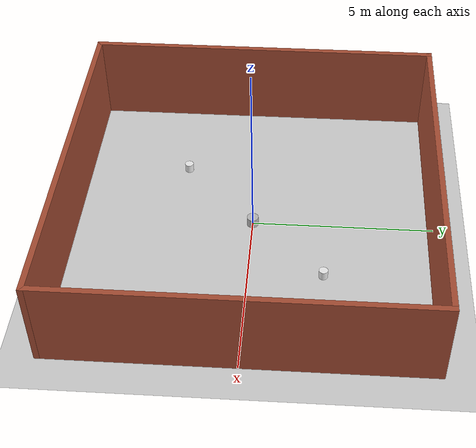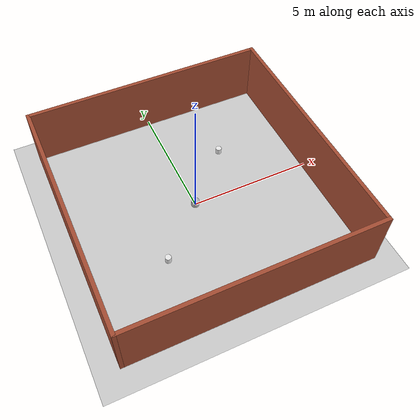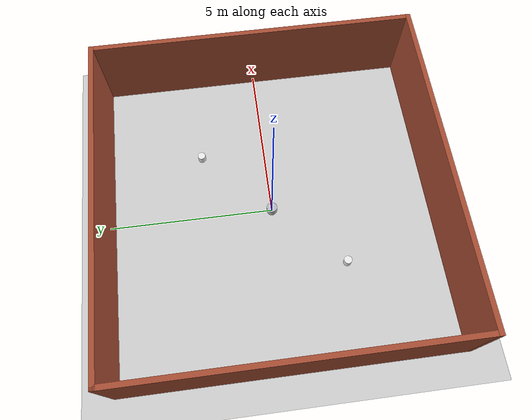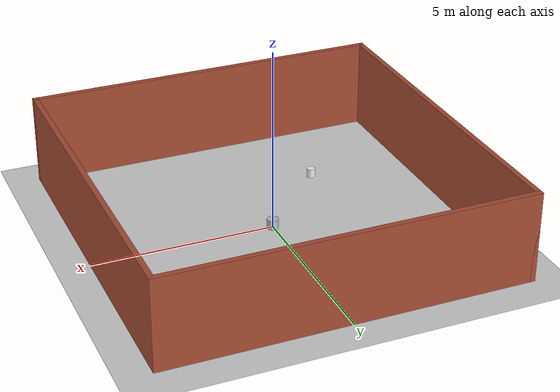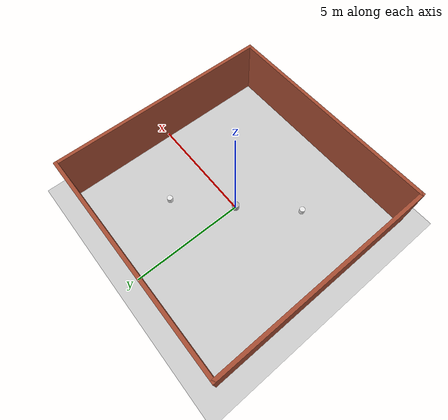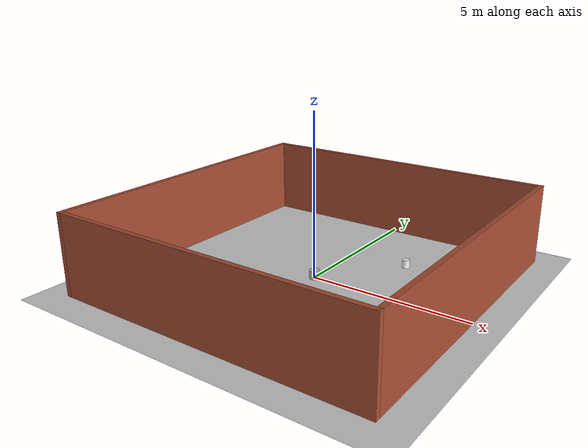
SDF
<sdf version="1.6">
  <world name="bayland_world">
    <physics name="1ms" type="ignored">
      <max_step_size>0.001</max_step_size>
      <real_time_factor>1.0</real_time_factor>
    </physics>
    <plugin
      filename="ignition-gazebo-physics-system"
      name="gz::sim::systems::Physics">
    </plugin>
    <plugin
      filename="ignition-gazebo-user-commands-system"
      name="gz::sim::systems::UserCommands">
    </plugin>
    <plugin
      filename="ignition-gazebo-scene-broadcaster-system"
      name="gz::sim::systems::SceneBroadcaster">
    </plugin>
    <plugin
      filename="ignition-gazebo-contact-system"
      name="gz::sim::systems::Contact">
    </plugin>

    <light type="directional" name="sun">
      <cast_shadows>true</cast_shadows>
      <pose>0 0 10 0 0 0</pose>
      <diffuse>0.8 0.8 0.8 1</diffuse>
      <specular>0.2 0.2 0.2 1</specular>
      <attenuation>
        <range>1000</range>
        <constant>0.9</constant>
        <linear>0.01</linear>
        <quadratic>0.001</quadratic>
      </attenuation>
      <direction>-0.5 0.1 -0.9</direction>
    </light>

    <model name="ground_plane">
      <static>true</static>
      <link name="link">
        <collision name="collision">
          <geometry>
            <plane>
              <normal>0 0 1</normal>
              <size>100 100</size>
            </plane>
          </geometry>
        </collision>
        <visual name="visual">
          <geometry>
            <plane>
              <normal>0 0 1</normal>
              <size>100 100</size>
            </plane>
          </geometry>
          <material>
            <ambient>0.8 0.8 0.8 1</ambient>
            <diffuse>0.8 0.8 0.8 1</diffuse>
            <specular>0.8 0.8 0.8 1</specular>
          </material>
        </visual>
      </link>
    </model>

<include>
      <uri>model://10by10</uri>
    </include>

    <include>
      <uri>model://obstacle1</uri>
    </include>

    <include>
      <uri>model://obstacle2</uri>
    </include>

    <include>
      <uri>model://obstacle3</uri>
    </include>

    <include>
      <uri>model://obstacle4</uri>
    </include>

    <include>
      <uri>model://obstacle5</uri>
    </include>

    <include>
      <uri>model://obstacle6</uri>
    </include>

    <include>
      <uri>model://obstacle7</uri>
    </include>

    <include>
      <uri>model://obstacle8</uri>
    </include>

  </world>
</sdf>

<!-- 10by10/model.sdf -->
<sdf version='1.6'>
  <model name='10by10'>
      <pose>0.019579 -0.010902 0 0 -0 0</pose>
      <link name='Wall_0'>
        <collision name='Wall_0_Collision'>
          <geometry>
            <box>
              <size>10 0.15 2.5</size>
            </box>
          </geometry>
          <pose>0 0 1.25 0 -0 0</pose>
          <max_contacts>10</max_contacts>
          <surface>
            <contact>
              <ode/>
            </contact>
            <bounce/>
            <friction>
              <torsional>
                <ode/>
              </torsional>
              <ode/>
            </friction>
          </surface>
        </collision>
        <visual name='Wall_0_Visual'>
          <pose>0 0 1.25 0 -0 0</pose>
          <geometry>
            <box>
              <size>10 0.15 2.5</size>
            </box>
          </geometry>
          <material>
            <script>
              <uri>file://media/materials/scripts/gazebo.material</uri>
              <name>Gazebo/Bricks</name>
            </script>
            <ambient>1 1 1 1</ambient>
          </material>
          <meta>
            <layer>0</layer>
          </meta>
        </visual>
        <pose>-4.925 -0 0 0 -0 1.5708</pose>
        <self_collide>0</self_collide>
        <enable_wind>0</enable_wind>
        <kinematic>0</kinematic>
      </link>
      <link name='Wall_1'>
        <collision name='Wall_1_Collision'>
          <geometry>
            <box>
              <size>10 0.15 2.5</size>
            </box>
          </geometry>
          <pose>0 0 1.25 0 -0 0</pose>
          <max_contacts>10</max_contacts>
          <surface>
            <contact>
              <ode/>
            </contact>
            <bounce/>
            <friction>
              <torsional>
                <ode/>
              </torsional>
              <ode/>
            </friction>
          </surface>
        </collision>
        <visual name='Wall_1_Visual'>
          <pose>0 0 1.25 0 -0 0</pose>
          <geometry>
            <box>
              <size>10 0.15 2.5</size>
            </box>
          </geometry>
          <material>
            <script>
              <uri>file://media/materials/scripts/gazebo.material</uri>
              <name>Gazebo/Bricks</name>
            </script>
            <ambient>1 1 1 1</ambient>
          </material>
          <meta>
            <layer>0</layer>
          </meta>
        </visual>
        <pose>0 4.925 0 0 -0 0</pose>
        <self_collide>0</self_collide>
        <enable_wind>0</enable_wind>
        <kinematic>0</kinematic>
      </link>
      <link name='Wall_2'>
        <collision name='Wall_2_Collision'>
          <geometry>
            <box>
              <size>10 0.15 2.5</size>
            </box>
          </geometry>
          <pose>0 0 1.25 0 -0 0</pose>
          <max_contacts>10</max_contacts>
          <surface>
            <contact>
              <ode/>
            </contact>
            <bounce/>
            <friction>
              <torsional>
                <ode/>
              </torsional>
              <ode/>
            </friction>
          </surface>
        </collision>
        <visual name='Wall_2_Visual'>
          <pose>0 0 1.25 0 -0 0</pose>
          <geometry>
            <box>
              <size>10 0.15 2.5</size>
            </box>
          </geometry>
          <material>
            <script>
              <uri>file://media/materials/scripts/gazebo.material</uri>
              <name>Gazebo/Bricks</name>
            </script>
            <ambient>1 1 1 1</ambient>
          </material>
          <meta>
            <layer>0</layer>
          </meta>
        </visual>
        <pose>4.925 -0 0 0 -0 -1.5708</pose>
        <self_collide>0</self_collide>
        <enable_wind>0</enable_wind>
        <kinematic>0</kinematic>
      </link>
      <link name='Wall_3'>
        <collision name='Wall_3_Collision'>
          <geometry>
            <box>
              <size>10 0.15 2.5</size>
            </box>
          </geometry>
          <pose>0 0 1.25 0 -0 0</pose>
          <max_contacts>10</max_contacts>
          <surface>
            <contact>
              <ode/>
            </contact>
            <bounce/>
            <friction>
              <torsional>
                <ode/>
              </torsional>
              <ode/>
            </friction>
          </surface>
        </collision>
        <visual name='Wall_3_Visual'>
          <pose>0 0 1.25 0 -0 0</pose>
          <geometry>
            <box>
              <size>10 0.15 2.5</size>
            </box>
          </geometry>
          <material>
            <script>
              <uri>file://media/materials/scripts/gazebo.material</uri>
              <name>Gazebo/Bricks</name>
            </script>
            <ambient>1 1 1 1</ambient>
          </material>
          <meta>
            <layer>0</layer>
          </meta>
        </visual>
        <pose>0 -4.925 0 0 -0 3.14159</pose>
        <self_collide>0</self_collide>
        <enable_wind>0</enable_wind>
        <kinematic>0</kinematic>
      </link>
      <static>1</static>
    </model>
</sdf>

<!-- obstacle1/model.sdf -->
<sdf version='1.8'>
  <model name="obstacle1">
    <pose>2 2 0.25 0 0 0</pose>
    <static>false</static>
    <link name="link">
      <collision name="obstacle1_collision">
        <geometry>
          <cylinder>
            <radius>0.12</radius>
            <length>0.25</length>
          </cylinder>
        </geometry>
      </collision>
      <visual name="obstacle1_visual">
        <geometry>
          <cylinder>
            <radius>0.12</radius>
            <length>0.25</length>
          </cylinder>
        </geometry>
        <material>
          <script>
            <uri>file://media/materials/scripts/gazebo.material</uri>
            <name>Gazebo/White</name>
          </script>
        </material>
      </visual>
    </link>
  </model>
</sdf>

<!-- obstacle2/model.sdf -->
<sdf version='1.8'>
    <model name="obstacle2">
      <pose>-2 -2 0.25 0 0 0</pose>
      <static>false</static>
      <link name="link">
        <collision name="obstacle2_collision">
          <geometry>
            <cylinder>
              <radius>0.12</radius>
              <length>0.25</length>
            </cylinder>
          </geometry>
        </collision>

        <visual name="obstacle2_visual">
          <geometry>
            <cylinder>
              <radius>0.12</radius>
              <length>0.25</length>
            </cylinder>
          </geometry>
          <material>
            <script>
              <uri>file://media/materials/scripts/gazebo.material</uri>
              <name>Gazebo/White</name>
            </script>
          </material>
        </visual>
      </link>
    </model>
</sdf>

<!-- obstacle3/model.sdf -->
<sdf version='1.6'>
    <model name="obstacle3">
      <link name="link_obstacle3">
        <collision name="collision">
          <geometry>
            <cylinder>
              <radius>0.16</radius>
              <length>0.50</length>
            </cylinder>
          </geometry>
        </collision>

        <visual name="visual">
          <geometry>
            <cylinder>
              <radius>0.16</radius>
              <length>0.50</length>
            </cylinder>
          </geometry>
        </visual>
      </link>
      <plugin name="p3d_base_controller_obstacle3" filename="libgazebo_ros_p3d.so">
        <ros>
          <namespace>/obstacle</namespace>
          <remapping>odom:=odom</remapping>
        </ros>
        <always_on>true</always_on>
        <update_rate>50.0</update_rate>
        <body_name>link_obstacle3</body_name>
        <topic_name>odom_obs</topic_name>
        <gaussian_noise>0.0</gaussian_noise>
        <frame_name>world</frame_name>
        <xyz_offset>0 0 0</xyz_offset>
        <rpy_offset>0 0 0</rpy_offset>
      </plugin>
    </model>
</sdf>

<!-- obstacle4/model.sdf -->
<sdf version='1.6'>
    <model name="obstacle4">
      <link name="link_obstacle4">
        <collision name="collision">
          <geometry>
            <cylinder>
              <radius>0.16</radius>
              <length>0.50</length>
            </cylinder>
          </geometry>
        </collision>

        <visual name="visual">
          <geometry>
            <cylinder>
              <radius>0.16</radius>
              <length>0.50</length>
            </cylinder>
          </geometry>
        </visual>
      </link>
      <plugin name="p3d_base_controller_obstacle4" filename="libgazebo_ros_p3d.so">
        <ros>
          <namespace>/obstacle</namespace>
          <remapping>odom:=odom</remapping>
        </ros>
        <always_on>true</always_on>
        <update_rate>50.0</update_rate>
        <body_name>link_obstacle4</body_name>
        <topic_name>odom_obs</topic_name>
        <gaussian_noise>0.0</gaussian_noise>
        <frame_name>world</frame_name>
        <xyz_offset>0 0 0</xyz_offset>
        <rpy_offset>0 0 0</rpy_offset>
      </plugin>
    </model>
</sdf>

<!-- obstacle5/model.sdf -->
<sdf version='1.6'>
    <model name="obstacle5">
      <link name="link_obstacle5">
        <collision name="collision">
          <geometry>
            <cylinder>
              <radius>0.16</radius>
              <length>0.50</length>
            </cylinder>
          </geometry>
        </collision>

        <visual name="visual">
          <geometry>
            <cylinder>
              <radius>0.16</radius>
              <length>0.50</length>
            </cylinder>
          </geometry>
        </visual>
      </link>
      <plugin name="p3d_base_controller_obstacle5" filename="libgazebo_ros_p3d.so">
        <ros>
          <namespace>/obstacle</namespace>
          <remapping>odom:=odom</remapping>
        </ros>
        <always_on>true</always_on>
        <update_rate>50.0</update_rate>
        <body_name>link_obstacle5</body_name>
        <topic_name>odom_obs</topic_name>
        <gaussian_noise>0.0</gaussian_noise>
        <frame_name>world</frame_name>
        <xyz_offset>0 0 0</xyz_offset>
        <rpy_offset>0 0 0</rpy_offset>
      </plugin>
    </model>
</sdf>

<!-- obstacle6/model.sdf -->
<sdf version='1.6'>
    <model name="obstacle6">
      <link name="link_obstacle6">
        <collision name="collision">
          <geometry>
            <cylinder>
              <radius>0.16</radius>
              <length>0.50</length>
            </cylinder>
          </geometry>
        </collision>

        <visual name="visual">
          <geometry>
            <cylinder>
              <radius>0.16</radius>
              <length>0.50</length>
            </cylinder>
          </geometry>
        </visual>
      </link>
      <plugin name="p3d_base_controller_obstacle6" filename="libgazebo_ros_p3d.so">
        <ros>
          <namespace>/obstacle</namespace>
          <remapping>odom:=odom</remapping>
        </ros>
        <always_on>true</always_on>
        <update_rate>50.0</update_rate>
        <body_name>link_obstacle6</body_name>
        <topic_name>odom_obs</topic_name>
        <gaussian_noise>0.0</gaussian_noise>
        <frame_name>world</frame_name>
        <xyz_offset>0 0 0</xyz_offset>
        <rpy_offset>0 0 0</rpy_offset>
      </plugin>
    </model>
</sdf>

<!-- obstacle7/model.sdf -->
<sdf version='1.6'>
    <model name="obstacle7">
      <link name="link_obstacle7">
        <collision name="collision">
          <geometry>
            <cylinder>
              <radius>0.16</radius>
              <length>0.50</length>
            </cylinder>
          </geometry>
        </collision>

        <visual name="visual">
          <geometry>
            <cylinder>
              <radius>0.16</radius>
              <length>0.50</length>
            </cylinder>
          </geometry>
        </visual>
      </link>
      <plugin name="p3d_base_controller_obstacle7" filename="libgazebo_ros_p3d.so">
        <ros>
          <namespace>/obstacle</namespace>
          <remapping>odom:=odom</remapping>
        </ros>
        <always_on>true</always_on>
        <update_rate>50.0</update_rate>
        <body_name>link_obstacle7</body_name>
        <topic_name>odom_obs</topic_name>
        <gaussian_noise>0.0</gaussian_noise>
        <frame_name>world</frame_name>
        <xyz_offset>0 0 0</xyz_offset>
        <rpy_offset>0 0 0</rpy_offset>
      </plugin>
    </model>
</sdf>

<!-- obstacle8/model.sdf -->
<sdf version='1.6'>
    <model name="obstacle8">
      <link name="link_obstacle8">
        <collision name="collision">
          <geometry>
            <cylinder>
              <radius>0.16</radius>
              <length>0.50</length>
            </cylinder>
          </geometry>
        </collision>

        <visual name="visual">
          <geometry>
            <cylinder>
              <radius>0.16</radius>
              <length>0.50</length>
            </cylinder>
          </geometry>
        </visual>
      </link>
      <plugin name="p3d_base_controller_obstacle8" filename="libgazebo_ros_p3d.so">
        <ros>
          <namespace>/obstacle</namespace>
          <remapping>odom:=odom</remapping>
        </ros>
        <always_on>true</always_on>
        <update_rate>50.0</update_rate>
        <body_name>link_obstacle8</body_name>
        <topic_name>odom_obs</topic_name>
        <gaussian_noise>0.0</gaussian_noise>
        <frame_name>world</frame_name>
        <xyz_offset>0 0 0</xyz_offset>
        <rpy_offset>0 0 0</rpy_offset>
      </plugin>
    </model>
</sdf>
